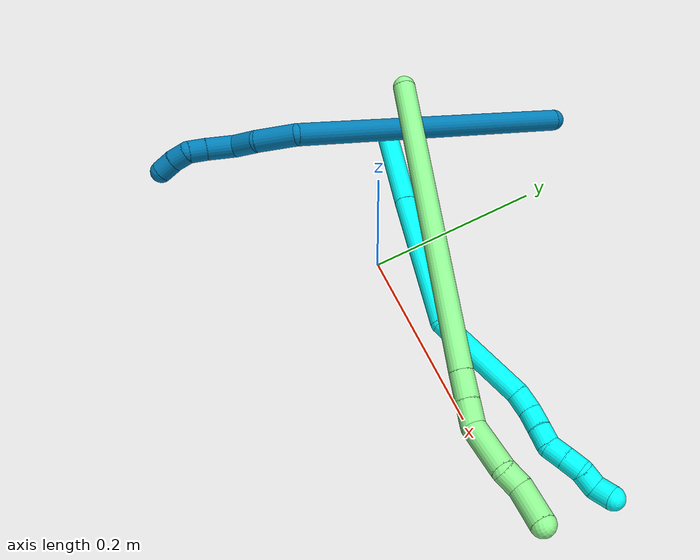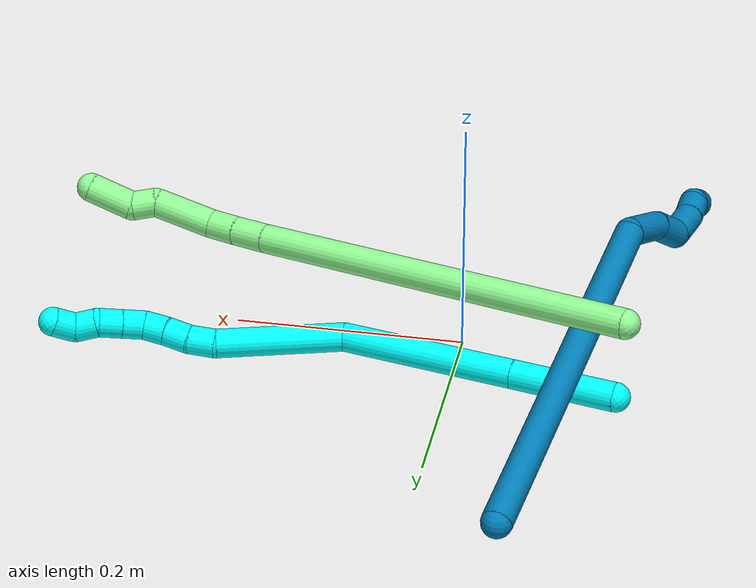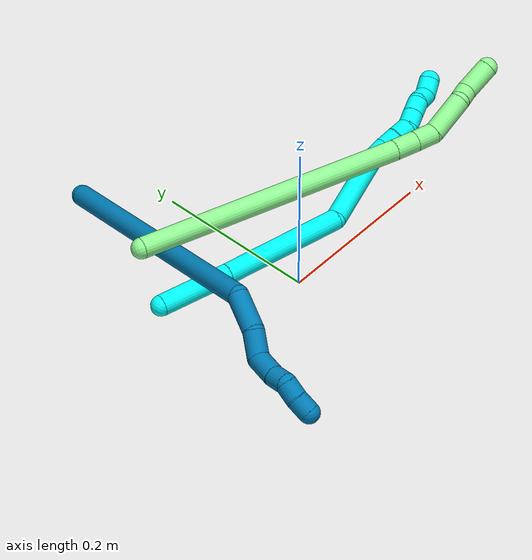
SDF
<sdf version="1.7">
 <world name="default">
  <model name="photoneo_s_sensor">
   <static>1</static>
   <pose>0 0 2 1.57079 1.57079 3.14159</pose>
   <link name="link">
    <inertial><mass>0.1</mass></inertial>
    <sensor name="sensor" type="depth">
     <update_rate>30</update_rate>
     <camera>
      <horizontal_fov>1.22</horizontal_fov>
      <image><width>1920</width><height>1200</height><format>B8G8R8</format></image>
      <clip><near>0.1</near><far>4</far></clip>
      <depth_camera><output>points</output></depth_camera>
     </camera>
     <plugin name="camera_plugin" filename="libgazebo_ros_depth_camera.so">
      <baseline>0.2</baseline>
      <alwaysOn>1</alwaysOn>
      <updateRate>0.0</updateRate>
      <cameraName>camera_ir</cameraName>
      <imageTopicName>/camera/color/image_raw</imageTopicName>
      <cameraInfoTopicName>/camera/color/camera_info</cameraInfoTopicName>
      <depthImageTopicName>/camera/depth/image_raw</depthImageTopicName>
      <depthImageCameraInfoTopicName>/camera/depth/camera_info</depthImageCameraInfoTopicName>
      <pointCloudTopicName>/camera/depth/points</pointCloudTopicName>
      <frameName>fr_optical</frameName>
      <pointCloudCutoff>0.1</pointCloudCutoff>
      <pointCloudCutoffMax>2.0</pointCloudCutoffMax>
      <distortionK1>0</distortionK1>
      <distortionK2>0</distortionK2>
      <distortionK3>0</distortionK3>
      <distortionT1>0</distortionT1>
      <distortionT2>0</distortionT2>
      <CxPrime>0</CxPrime>
      <Cx>0</Cx>
      <Cy>0</Cy>
      <focalLength>0</focalLength>
      <hackBaseline>0</hackBaseline>
     </plugin>
    </sensor>
   </link>
  </model>
  <model name="bin">
   <static>1</static>
   <link name="bottom">
    <collision name="collision-bottom">
     <pose>0 0 -0.01 0 -0 0</pose>
     <geometry><box><size>0.8 0.6 0.02</size></box></geometry>
     <surface>
      <friction><ode><mu>100</mu><mu2>100</mu2></ode></friction>
      <contact><collide_bitmask>65535</collide_bitmask></contact>
     </surface>
    </collision>
   </link>
   <link name="west_wall">
    <collision name="collision-west_wall">
     <pose>-0.41 0 0.1 0 -0 0</pose>
     <geometry><box><size>0.02 0.6 0.2</size></box></geometry>
     <surface>
      <friction><ode><mu>100</mu><mu2>100</mu2></ode></friction>
      <contact><collide_bitmask>65535</collide_bitmask></contact>
     </surface>
    </collision>
   </link>
   <link name="east_wall">
    <collision name="collision-east_wall">
     <pose>0.41 0 0.1 0 -0 0</pose>
     <geometry><box><size>0.02 0.6 0.2</size></box></geometry>
     <surface>
      <friction><ode><mu>100</mu><mu2>100</mu2></ode></friction>
      <contact><collide_bitmask>65535</collide_bitmask></contact>
     </surface>
    </collision>
   </link>
   <link name="south_wall">
    <collision name="collision-south_wall">
     <pose>0 -0.31 0.1 0 -0 0</pose>
     <geometry><box><size>0.8 0.02 0.2</size></box></geometry>
     <surface>
      <friction><ode><mu>100</mu><mu2>100</mu2></ode></friction>
      <contact><collide_bitmask>65535</collide_bitmask></contact>
     </surface>
    </collision>
   </link>
   <link name="north_wall">
    <collision name="collision-north_wall">
     <pose>0 0.31 0.1 0 -0 0</pose>
     <geometry><box><size>0.8 0.02 0.2</size></box></geometry>
     <surface>
      <friction><ode><mu>100</mu><mu2>100</mu2></ode></friction>
      <contact><collide_bitmask>65535</collide_bitmask></contact>
     </surface>
    </collision>
   </link>
  </model>
  <model name="3">
   <static>0</static>
   <link name="3">
    <collision name="collision-cylinder-e_1_1_4">
     <pose>0.031599 -0.018554 0.026396 0.612677 0.774963 0.256749</pose>
     <geometry><cylinder><radius>0.0125</radius><length>0.090322</length></cylinder></geometry>
     <surface>
      <friction><ode><mu>1.16</mu><mu2>1.16</mu2><slip1>0</slip1><slip2>0</slip2></ode></friction>
      <contact><ode><kp>1e+06</kp><kd>1</kd><max_vel>0</max_vel><min_depth>0.001</min_depth></ode></contact>
     </surface>
    </collision>
    <visual name="visual-cylinder-e_1_1_4">
     <pose>0.031599 -0.018554 0.026396 0.612677 0.774963 0.256749</pose>
     <geometry><cylinder><radius>0.0125</radius><length>0.090322</length></cylinder></geometry>
     <material><ambient>0.003922 1 0.996078 1</ambient></material>
    </visual>
    <collision name="collision-cylinder-e_2_4_5">
     <pose>0.117652 -0.067198 0.098918 0.578014 0.779761 0.243151</pose>
     <geometry><cylinder><radius>0.0125</radius><length>0.154897</length></cylinder></geometry>
     <surface>
      <friction><ode><mu>1.16</mu><mu2>1.16</mu2><slip1>0</slip1><slip2>0</slip2></ode></friction>
      <contact><ode><kp>1e+06</kp><kd>1</kd><max_vel>0</max_vel><min_depth>0.001</min_depth></ode></contact>
     </surface>
    </collision>
    <visual name="visual-cylinder-e_2_4_5">
     <pose>0.117652 -0.067198 0.098918 0.578014 0.779761 0.243151</pose>
     <geometry><cylinder><radius>0.0125</radius><length>0.154897</length></cylinder></geometry>
     <material><ambient>0.003922 1 0.996078 1</ambient></material>
    </visual>
    <collision name="collision-cylinder-e_3_5_6">
     <pose>0.217677 -0.090649 0.175629 -0.213745 0.969 -0.112814</pose>
     <geometry><cylinder><radius>0.0125</radius><length>0.110565</length></cylinder></geometry>
     <surface>
      <friction><ode><mu>1.16</mu><mu2>1.16</mu2><slip1>0</slip1><slip2>0</slip2></ode></friction>
      <contact><ode><kp>1e+06</kp><kd>1</kd><max_vel>0</max_vel><min_depth>0.001</min_depth></ode></contact>
     </surface>
    </collision>
    <visual name="visual-cylinder-e_3_5_6">
     <pose>0.217677 -0.090649 0.175629 -0.213745 0.969 -0.112814</pose>
     <geometry><cylinder><radius>0.0125</radius><length>0.110565</length></cylinder></geometry>
     <material><ambient>0.003922 1 0.996078 1</ambient></material>
    </visual>
    <collision name="collision-cylinder-e_4_6_7">
     <pose>0.271662 -0.085244 0.213909 0.158951 0.823653 0.069549</pose>
     <geometry><cylinder><radius>0.0125</radius><length>0.022938</length></cylinder></geometry>
     <surface>
      <friction><ode><mu>1.16</mu><mu2>1.16</mu2><slip1>0</slip1><slip2>0</slip2></ode></friction>
      <contact><ode><kp>1e+06</kp><kd>1</kd><max_vel>0</max_vel><min_depth>0.001</min_depth></ode></contact>
     </surface>
    </collision>
    <visual name="visual-cylinder-e_4_6_7">
     <pose>0.271662 -0.085244 0.213909 0.158951 0.823653 0.069549</pose>
     <geometry><cylinder><radius>0.0125</radius><length>0.022938</length></cylinder></geometry>
     <material><ambient>0.003922 1 0.996078 1</ambient></material>
    </visual>
    <collision name="collision-cylinder-e_5_7_8">
     <pose>0.286378 -0.088719 0.2295 0.276627 0.654785 0.09448</pose>
     <geometry><cylinder><radius>0.0125</radius><length>0.020696</length></cylinder></geometry>
     <surface>
      <friction><ode><mu>1.16</mu><mu2>1.16</mu2><slip1>0</slip1><slip2>0</slip2></ode></friction>
      <contact><ode><kp>1e+06</kp><kd>1</kd><max_vel>0</max_vel><min_depth>0.001</min_depth></ode></contact>
     </surface>
    </collision>
    <visual name="visual-cylinder-e_5_7_8">
     <pose>0.286378 -0.088719 0.2295 0.276627 0.654785 0.09448</pose>
     <geometry><cylinder><radius>0.0125</radius><length>0.020696</length></cylinder></geometry>
     <material><ambient>0.003922 1 0.996078 1</ambient></material>
    </visual>
    <collision name="collision-cylinder-e_6_8_9">
     <pose>0.299414 -0.093255 0.244597 0.308446 0.727869 0.11829</pose>
     <geometry><cylinder><radius>0.0125</radius><length>0.020246</length></cylinder></geometry>
     <surface>
      <friction><ode><mu>1.16</mu><mu2>1.16</mu2><slip1>0</slip1><slip2>0</slip2></ode></friction>
      <contact><ode><kp>1e+06</kp><kd>1</kd><max_vel>0</max_vel><min_depth>0.001</min_depth></ode></contact>
     </surface>
    </collision>
    <visual name="visual-cylinder-e_6_8_9">
     <pose>0.299414 -0.093255 0.244597 0.308446 0.727869 0.11829</pose>
     <geometry><cylinder><radius>0.0125</radius><length>0.020246</length></cylinder></geometry>
     <material><ambient>0.003922 1 0.996078 1</ambient></material>
    </visual>
    <collision name="collision-cylinder-e_7_9_10">
     <pose>0.313313 -0.093202 0.258369 -0.34303 0.798559 -0.145916</pose>
     <geometry><cylinder><radius>0.0125</radius><length>0.020002</length></cylinder></geometry>
     <surface>
      <friction><ode><mu>1.16</mu><mu2>1.16</mu2><slip1>0</slip1><slip2>0</slip2></ode></friction>
      <contact><ode><kp>1e+06</kp><kd>1</kd><max_vel>0</max_vel><min_depth>0.001</min_depth></ode></contact>
     </surface>
    </collision>
    <visual name="visual-cylinder-e_7_9_10">
     <pose>0.313313 -0.093202 0.258369 -0.34303 0.798559 -0.145916</pose>
     <geometry><cylinder><radius>0.0125</radius><length>0.020002</length></cylinder></geometry>
     <material><ambient>0.003922 1 0.996078 1</ambient></material>
    </visual>
    <collision name="collision-cylinder-e_8_10_11">
     <pose>0.327764 -0.088691 0.271525 -0.317516 0.810424 -0.137139</pose>
     <geometry><cylinder><radius>0.0125</radius><length>0.020112</length></cylinder></geometry>
     <surface>
      <friction><ode><mu>1.16</mu><mu2>1.16</mu2><slip1>0</slip1><slip2>0</slip2></ode></friction>
      <contact><ode><kp>1e+06</kp><kd>1</kd><max_vel>0</max_vel><min_depth>0.001</min_depth></ode></contact>
     </surface>
    </collision>
    <visual name="visual-cylinder-e_8_10_11">
     <pose>0.327764 -0.088691 0.271525 -0.317516 0.810424 -0.137139</pose>
     <geometry><cylinder><radius>0.0125</radius><length>0.020112</length></cylinder></geometry>
     <material><ambient>0.003922 1 0.996078 1</ambient></material>
    </visual>
    <collision name="collision-cylinder-e_9_11_12">
     <pose>0.344349 -0.08668 0.281811 0.041295 1.19166 0.028002</pose>
     <geometry><cylinder><radius>0.0125</radius><length>0.020021</length></cylinder></geometry>
     <surface>
      <friction><ode><mu>1.16</mu><mu2>1.16</mu2><slip1>0</slip1><slip2>0</slip2></ode></friction>
      <contact><ode><kp>1e+06</kp><kd>1</kd><max_vel>0</max_vel><min_depth>0.001</min_depth></ode></contact>
     </surface>
    </collision>
    <visual name="visual-cylinder-e_9_11_12">
     <pose>0.344349 -0.08668 0.281811 0.041295 1.19166 0.028002</pose>
     <geometry><cylinder><radius>0.0125</radius><length>0.020021</length></cylinder></geometry>
     <material><ambient>0.003922 1 0.996078 1</ambient></material>
    </visual>
    <collision name="collision-cylinder-e_10_12_2">
     <pose>0.358905 -0.083755 0.29357 -0.364978 0.547253 -0.103497</pose>
     <geometry><cylinder><radius>0.0125</radius><length>0.020201</length></cylinder></geometry>
     <surface>
      <friction><ode><mu>1.16</mu><mu2>1.16</mu2><slip1>0</slip1><slip2>0</slip2></ode></friction>
      <contact><ode><kp>1e+06</kp><kd>1</kd><max_vel>0</max_vel><min_depth>0.001</min_depth></ode></contact>
     </surface>
    </collision>
    <visual name="visual-cylinder-e_10_12_2">
     <pose>0.358905 -0.083755 0.29357 -0.364978 0.547253 -0.103497</pose>
     <geometry><cylinder><radius>0.0125</radius><length>0.020201</length></cylinder></geometry>
     <material><ambient>0.003922 1 0.996078 1</ambient></material>
    </visual>
    <collision name="collision-sphere-2">
     <pose>0.364161 -0.080676 0.301628 0 -0 0</pose>
     <geometry><sphere><radius>0.0125</radius></sphere></geometry>
     <surface>
      <friction><ode><mu>1.16</mu><mu2>1.16</mu2><slip1>0</slip1><slip2>0</slip2></ode></friction>
      <contact><ode><kp>1e+06</kp><kd>1</kd><max_vel>0</max_vel><min_depth>0.001</min_depth></ode></contact>
     </surface>
    </collision>
    <visual name="visual-sphere-2">
     <pose>0.364161 -0.080676 0.301628 0 -0 0</pose>
     <geometry><sphere><radius>0.0125</radius></sphere></geometry>
     <material><ambient>0.003922 1 0.996078 1</ambient></material>
    </visual>
    <collision name="collision-sphere-12">
     <pose>0.353649 -0.086833 0.285513 0 -0 0</pose>
     <geometry><sphere><radius>0.0125</radius></sphere></geometry>
     <surface>
      <friction><ode><mu>1.16</mu><mu2>1.16</mu2><slip1>0</slip1><slip2>0</slip2></ode></friction>
      <contact><ode><kp>1e+06</kp><kd>1</kd><max_vel>0</max_vel><min_depth>0.001</min_depth></ode></contact>
     </surface>
    </collision>
    <visual name="visual-sphere-12">
     <pose>0.353649 -0.086833 0.285513 0 -0 0</pose>
     <geometry><sphere><radius>0.0125</radius></sphere></geometry>
     <material><ambient>0.003922 1 0.996078 1</ambient></material>
    </visual>
    <collision name="collision-sphere-11">
     <pose>0.33505 -0.086528 0.278109 0 -0 0</pose>
     <geometry><sphere><radius>0.0125</radius></sphere></geometry>
     <surface>
      <friction><ode><mu>1.16</mu><mu2>1.16</mu2><slip1>0</slip1><slip2>0</slip2></ode></friction>
      <contact><ode><kp>1e+06</kp><kd>1</kd><max_vel>0</max_vel><min_depth>0.001</min_depth></ode></contact>
     </surface>
    </collision>
    <visual name="visual-sphere-11">
     <pose>0.33505 -0.086528 0.278109 0 -0 0</pose>
     <geometry><sphere><radius>0.0125</radius></sphere></geometry>
     <material><ambient>0.003922 1 0.996078 1</ambient></material>
    </visual>
    <collision name="collision-sphere-10">
     <pose>0.320477 -0.090855 0.264941 0 -0 0</pose>
     <geometry><sphere><radius>0.0125</radius></sphere></geometry>
     <surface>
      <friction><ode><mu>1.16</mu><mu2>1.16</mu2><slip1>0</slip1><slip2>0</slip2></ode></friction>
      <contact><ode><kp>1e+06</kp><kd>1</kd><max_vel>0</max_vel><min_depth>0.001</min_depth></ode></contact>
     </surface>
    </collision>
    <visual name="visual-sphere-10">
     <pose>0.320477 -0.090855 0.264941 0 -0 0</pose>
     <geometry><sphere><radius>0.0125</radius></sphere></geometry>
     <material><ambient>0.003922 1 0.996078 1</ambient></material>
    </visual>
    <collision name="collision-sphere-9">
     <pose>0.306149 -0.095549 0.251798 0 -0 0</pose>
     <geometry><sphere><radius>0.0125</radius></sphere></geometry>
     <surface>
      <friction><ode><mu>1.16</mu><mu2>1.16</mu2><slip1>0</slip1><slip2>0</slip2></ode></friction>
      <contact><ode><kp>1e+06</kp><kd>1</kd><max_vel>0</max_vel><min_depth>0.001</min_depth></ode></contact>
     </surface>
    </collision>
    <visual name="visual-sphere-9">
     <pose>0.306149 -0.095549 0.251798 0 -0 0</pose>
     <geometry><sphere><radius>0.0125</radius></sphere></geometry>
     <material><ambient>0.003922 1 0.996078 1</ambient></material>
    </visual>
    <collision name="collision-sphere-4">
     <pose>0.063197 -0.037109 0.052793 0 -0 0</pose>
     <geometry><sphere><radius>0.0125</radius></sphere></geometry>
     <surface>
      <friction><ode><mu>1.16</mu><mu2>1.16</mu2><slip1>0</slip1><slip2>0</slip2></ode></friction>
      <contact><ode><kp>1e+06</kp><kd>1</kd><max_vel>0</max_vel><min_depth>0.001</min_depth></ode></contact>
     </surface>
    </collision>
    <visual name="visual-sphere-4">
     <pose>0.063197 -0.037109 0.052793 0 -0 0</pose>
     <geometry><sphere><radius>0.0125</radius></sphere></geometry>
     <material><ambient>0.003922 1 0.996078 1</ambient></material>
    </visual>
    <collision name="collision-sphere-1">
     <geometry><sphere><radius>0.0125</radius></sphere></geometry>
     <surface>
      <friction><ode><mu>1.16</mu><mu2>1.16</mu2><slip1>0</slip1><slip2>0</slip2></ode></friction>
      <contact><ode><kp>1e+06</kp><kd>1</kd><max_vel>0</max_vel><min_depth>0.001</min_depth></ode></contact>
     </surface>
    </collision>
    <visual name="visual-sphere-1">
     <geometry><sphere><radius>0.0125</radius></sphere></geometry>
     <material><ambient>0.003922 1 0.996078 1</ambient></material>
    </visual>
    <collision name="collision-sphere-8">
     <pose>0.29268 -0.09096 0.237396 0 -0 0</pose>
     <geometry><sphere><radius>0.0125</radius></sphere></geometry>
     <surface>
      <friction><ode><mu>1.16</mu><mu2>1.16</mu2><slip1>0</slip1><slip2>0</slip2></ode></friction>
      <contact><ode><kp>1e+06</kp><kd>1</kd><max_vel>0</max_vel><min_depth>0.001</min_depth></ode></contact>
     </surface>
    </collision>
    <visual name="visual-sphere-8">
     <pose>0.29268 -0.09096 0.237396 0 -0 0</pose>
     <geometry><sphere><radius>0.0125</radius></sphere></geometry>
     <material><ambient>0.003922 1 0.996078 1</ambient></material>
    </visual>
    <collision name="collision-sphere-5">
     <pose>0.172107 -0.097287 0.145044 0 -0 0</pose>
     <geometry><sphere><radius>0.0125</radius></sphere></geometry>
     <surface>
      <friction><ode><mu>1.16</mu><mu2>1.16</mu2><slip1>0</slip1><slip2>0</slip2></ode></friction>
      <contact><ode><kp>1e+06</kp><kd>1</kd><max_vel>0</max_vel><min_depth>0.001</min_depth></ode></contact>
     </surface>
    </collision>
    <visual name="visual-sphere-5">
     <pose>0.172107 -0.097287 0.145044 0 -0 0</pose>
     <geometry><sphere><radius>0.0125</radius></sphere></geometry>
     <material><ambient>0.003922 1 0.996078 1</ambient></material>
    </visual>
    <collision name="collision-sphere-6">
     <pose>0.263248 -0.08401 0.206214 0 -0 0</pose>
     <geometry><sphere><radius>0.0125</radius></sphere></geometry>
     <surface>
      <friction><ode><mu>1.16</mu><mu2>1.16</mu2><slip1>0</slip1><slip2>0</slip2></ode></friction>
      <contact><ode><kp>1e+06</kp><kd>1</kd><max_vel>0</max_vel><min_depth>0.001</min_depth></ode></contact>
     </surface>
    </collision>
    <visual name="visual-sphere-6">
     <pose>0.263248 -0.08401 0.206214 0 -0 0</pose>
     <geometry><sphere><radius>0.0125</radius></sphere></geometry>
     <material><ambient>0.003922 1 0.996078 1</ambient></material>
    </visual>
    <collision name="collision-sphere-7">
     <pose>0.280076 -0.086477 0.221604 0 -0 0</pose>
     <geometry><sphere><radius>0.0125</radius></sphere></geometry>
     <surface>
      <friction><ode><mu>1.16</mu><mu2>1.16</mu2><slip1>0</slip1><slip2>0</slip2></ode></friction>
      <contact><ode><kp>1e+06</kp><kd>1</kd><max_vel>0</max_vel><min_depth>0.001</min_depth></ode></contact>
     </surface>
    </collision>
    <visual name="visual-sphere-7">
     <pose>0.280076 -0.086477 0.221604 0 -0 0</pose>
     <geometry><sphere><radius>0.0125</radius></sphere></geometry>
     <material><ambient>0.003922 1 0.996078 1</ambient></material>
    </visual>
    <inertial>
     <pose>0.180738 -0.069724 0.147869 0 -0 0</pose>
     <mass>0.5</mass>
     <inertia>
      <ixx>0.000423</ixx>
      <ixy>0</ixy>
      <ixz>0</ixz>
      <iyy>0.000522</iyy>
      <iyz>0</iyz>
      <izz>-0.000213</izz>
     </inertia>
    </inertial>
   </link>
   <pose>-0.140643 0.085281 0.01256 0.261512 0.594052 0.335191</pose>
  </model>
  <model name="9">
   <static>0</static>
   <link name="9">
    <collision name="collision-cylinder-e_1_1_4">
     <pose>-0.039409 -0.154641 0.039386 1.32141 -0.242115 -0.188543</pose>
     <geometry><cylinder><radius>0.0125</radius><length>0.328744</length></cylinder></geometry>
     <surface>
      <friction><ode><mu>1.16</mu><mu2>1.16</mu2><slip1>0</slip1><slip2>0</slip2></ode></friction>
      <contact><ode><kp>1e+06</kp><kd>1</kd><max_vel>0</max_vel><min_depth>0.001</min_depth></ode></contact>
     </surface>
    </collision>
    <visual name="visual-cylinder-e_1_1_4">
     <pose>-0.039409 -0.154641 0.039386 1.32141 -0.242115 -0.188543</pose>
     <geometry><cylinder><radius>0.0125</radius><length>0.328744</length></cylinder></geometry>
     <material><ambient>0 0.490196 0.709804 1</ambient></material>
    </visual>
    <collision name="collision-cylinder-e_2_4_5">
     <pose>-0.090116 -0.328622 0.071892 1.91259 -0.50311 -0.698552</pose>
     <geometry><cylinder><radius>0.0125</radius><length>0.046862</length></cylinder></geometry>
     <surface>
      <friction><ode><mu>1.16</mu><mu2>1.16</mu2><slip1>0</slip1><slip2>0</slip2></ode></friction>
      <contact><ode><kp>1e+06</kp><kd>1</kd><max_vel>0</max_vel><min_depth>0.001</min_depth></ode></contact>
     </surface>
    </collision>
    <visual name="visual-cylinder-e_2_4_5">
     <pose>-0.090116 -0.328622 0.071892 1.91259 -0.50311 -0.698552</pose>
     <geometry><cylinder><radius>0.0125</radius><length>0.046862</length></cylinder></geometry>
     <material><ambient>0 0.490196 0.709804 1</ambient></material>
    </visual>
    <collision name="collision-cylinder-e_3_5_6">
     <pose>-0.110237 -0.357598 0.056244 2.309 -0.595383 -1.21327</pose>
     <geometry><cylinder><radius>0.0125</radius><length>0.03147</length></cylinder></geometry>
     <surface>
      <friction><ode><mu>1.16</mu><mu2>1.16</mu2><slip1>0</slip1><slip2>0</slip2></ode></friction>
      <contact><ode><kp>1e+06</kp><kd>1</kd><max_vel>0</max_vel><min_depth>0.001</min_depth></ode></contact>
     </surface>
    </collision>
    <visual name="visual-cylinder-e_3_5_6">
     <pose>-0.110237 -0.357598 0.056244 2.309 -0.595383 -1.21327</pose>
     <geometry><cylinder><radius>0.0125</radius><length>0.03147</length></cylinder></geometry>
     <material><ambient>0 0.490196 0.709804 1</ambient></material>
    </visual>
    <collision name="collision-cylinder-e_4_6_7">
     <pose>-0.12454 -0.382513 0.047974 1.5383 -0.344072 -0.333274</pose>
     <geometry><cylinder><radius>0.0125</radius><length>0.032478</length></cylinder></geometry>
     <surface>
      <friction><ode><mu>1.16</mu><mu2>1.16</mu2><slip1>0</slip1><slip2>0</slip2></ode></friction>
      <contact><ode><kp>1e+06</kp><kd>1</kd><max_vel>0</max_vel><min_depth>0.001</min_depth></ode></contact>
     </surface>
    </collision>
    <visual name="visual-cylinder-e_4_6_7">
     <pose>-0.12454 -0.382513 0.047974 1.5383 -0.344072 -0.333274</pose>
     <geometry><cylinder><radius>0.0125</radius><length>0.032478</length></cylinder></geometry>
     <material><ambient>0 0.490196 0.709804 1</ambient></material>
    </visual>
    <collision name="collision-cylinder-e_5_7_8">
     <pose>-0.131864 -0.407651 0.050112 1.40587 -0.182705 -0.15493</pose>
     <geometry><cylinder><radius>0.0125</radius><length>0.020327</length></cylinder></geometry>
     <surface>
      <friction><ode><mu>1.16</mu><mu2>1.16</mu2><slip1>0</slip1><slip2>0</slip2></ode></friction>
      <contact><ode><kp>1e+06</kp><kd>1</kd><max_vel>0</max_vel><min_depth>0.001</min_depth></ode></contact>
     </surface>
    </collision>
    <visual name="visual-cylinder-e_5_7_8">
     <pose>-0.131864 -0.407651 0.050112 1.40587 -0.182705 -0.15493</pose>
     <geometry><cylinder><radius>0.0125</radius><length>0.020327</length></cylinder></geometry>
     <material><ambient>0 0.490196 0.709804 1</ambient></material>
    </visual>
    <collision name="collision-cylinder-e_6_8_9">
     <pose>-0.135818 -0.425966 0.046832 2.09779 -0.212139 -0.366124</pose>
     <geometry><cylinder><radius>0.0125</radius><length>0.020015</length></cylinder></geometry>
     <surface>
      <friction><ode><mu>1.16</mu><mu2>1.16</mu2><slip1>0</slip1><slip2>0</slip2></ode></friction>
      <contact><ode><kp>1e+06</kp><kd>1</kd><max_vel>0</max_vel><min_depth>0.001</min_depth></ode></contact>
     </surface>
    </collision>
    <visual name="visual-cylinder-e_6_8_9">
     <pose>-0.135818 -0.425966 0.046832 2.09779 -0.212139 -0.366124</pose>
     <geometry><cylinder><radius>0.0125</radius><length>0.020015</length></cylinder></geometry>
     <material><ambient>0 0.490196 0.709804 1</ambient></material>
    </visual>
    <collision name="collision-cylinder-e_7_9_2">
     <pose>-0.13835 -0.442906 0.036538 2.13542 -0.042275 -0.076793</pose>
     <geometry><cylinder><radius>0.0125</radius><length>0.020105</length></cylinder></geometry>
     <surface>
      <friction><ode><mu>1.16</mu><mu2>1.16</mu2><slip1>0</slip1><slip2>0</slip2></ode></friction>
      <contact><ode><kp>1e+06</kp><kd>1</kd><max_vel>0</max_vel><min_depth>0.001</min_depth></ode></contact>
     </surface>
    </collision>
    <visual name="visual-cylinder-e_7_9_2">
     <pose>-0.13835 -0.442906 0.036538 2.13542 -0.042275 -0.076793</pose>
     <geometry><cylinder><radius>0.0125</radius><length>0.020105</length></cylinder></geometry>
     <material><ambient>0 0.490196 0.709804 1</ambient></material>
    </visual>
    <collision name="collision-sphere-2">
     <pose>-0.138775 -0.45139 0.031164 0 -0 0</pose>
     <geometry><sphere><radius>0.0125</radius></sphere></geometry>
     <surface>
      <friction><ode><mu>1.16</mu><mu2>1.16</mu2><slip1>0</slip1><slip2>0</slip2></ode></friction>
      <contact><ode><kp>1e+06</kp><kd>1</kd><max_vel>0</max_vel><min_depth>0.001</min_depth></ode></contact>
     </surface>
    </collision>
    <visual name="visual-sphere-2">
     <pose>-0.138775 -0.45139 0.031164 0 -0 0</pose>
     <geometry><sphere><radius>0.0125</radius></sphere></geometry>
     <material><ambient>0 0.490196 0.709804 1</ambient></material>
    </visual>
    <collision name="collision-sphere-9">
     <pose>-0.137925 -0.434422 0.041912 0 -0 0</pose>
     <geometry><sphere><radius>0.0125</radius></sphere></geometry>
     <surface>
      <friction><ode><mu>1.16</mu><mu2>1.16</mu2><slip1>0</slip1><slip2>0</slip2></ode></friction>
      <contact><ode><kp>1e+06</kp><kd>1</kd><max_vel>0</max_vel><min_depth>0.001</min_depth></ode></contact>
     </surface>
    </collision>
    <visual name="visual-sphere-9">
     <pose>-0.137925 -0.434422 0.041912 0 -0 0</pose>
     <geometry><sphere><radius>0.0125</radius></sphere></geometry>
     <material><ambient>0 0.490196 0.709804 1</ambient></material>
    </visual>
    <collision name="collision-sphere-4">
     <pose>-0.078818 -0.309282 0.078772 0 -0 0</pose>
     <geometry><sphere><radius>0.0125</radius></sphere></geometry>
     <surface>
      <friction><ode><mu>1.16</mu><mu2>1.16</mu2><slip1>0</slip1><slip2>0</slip2></ode></friction>
      <contact><ode><kp>1e+06</kp><kd>1</kd><max_vel>0</max_vel><min_depth>0.001</min_depth></ode></contact>
     </surface>
    </collision>
    <visual name="visual-sphere-4">
     <pose>-0.078818 -0.309282 0.078772 0 -0 0</pose>
     <geometry><sphere><radius>0.0125</radius></sphere></geometry>
     <material><ambient>0 0.490196 0.709804 1</ambient></material>
    </visual>
    <collision name="collision-sphere-1">
     <geometry><sphere><radius>0.0125</radius></sphere></geometry>
     <surface>
      <friction><ode><mu>1.16</mu><mu2>1.16</mu2><slip1>0</slip1><slip2>0</slip2></ode></friction>
      <contact><ode><kp>1e+06</kp><kd>1</kd><max_vel>0</max_vel><min_depth>0.001</min_depth></ode></contact>
     </surface>
    </collision>
    <visual name="visual-sphere-1">
     <geometry><sphere><radius>0.0125</radius></sphere></geometry>
     <material><ambient>0 0.490196 0.709804 1</ambient></material>
    </visual>
    <collision name="collision-sphere-8">
     <pose>-0.133711 -0.41751 0.051753 0 -0 0</pose>
     <geometry><sphere><radius>0.0125</radius></sphere></geometry>
     <surface>
      <friction><ode><mu>1.16</mu><mu2>1.16</mu2><slip1>0</slip1><slip2>0</slip2></ode></friction>
      <contact><ode><kp>1e+06</kp><kd>1</kd><max_vel>0</max_vel><min_depth>0.001</min_depth></ode></contact>
     </surface>
    </collision>
    <visual name="visual-sphere-8">
     <pose>-0.133711 -0.41751 0.051753 0 -0 0</pose>
     <geometry><sphere><radius>0.0125</radius></sphere></geometry>
     <material><ambient>0 0.490196 0.709804 1</ambient></material>
    </visual>
    <collision name="collision-sphere-5">
     <pose>-0.101413 -0.347962 0.065011 0 -0 0</pose>
     <geometry><sphere><radius>0.0125</radius></sphere></geometry>
     <surface>
      <friction><ode><mu>1.16</mu><mu2>1.16</mu2><slip1>0</slip1><slip2>0</slip2></ode></friction>
      <contact><ode><kp>1e+06</kp><kd>1</kd><max_vel>0</max_vel><min_depth>0.001</min_depth></ode></contact>
     </surface>
    </collision>
    <visual name="visual-sphere-5">
     <pose>-0.101413 -0.347962 0.065011 0 -0 0</pose>
     <geometry><sphere><radius>0.0125</radius></sphere></geometry>
     <material><ambient>0 0.490196 0.709804 1</ambient></material>
    </visual>
    <collision name="collision-sphere-6">
     <pose>-0.119062 -0.367234 0.047477 0 -0 0</pose>
     <geometry><sphere><radius>0.0125</radius></sphere></geometry>
     <surface>
      <friction><ode><mu>1.16</mu><mu2>1.16</mu2><slip1>0</slip1><slip2>0</slip2></ode></friction>
      <contact><ode><kp>1e+06</kp><kd>1</kd><max_vel>0</max_vel><min_depth>0.001</min_depth></ode></contact>
     </surface>
    </collision>
    <visual name="visual-sphere-6">
     <pose>-0.119062 -0.367234 0.047477 0 -0 0</pose>
     <geometry><sphere><radius>0.0125</radius></sphere></geometry>
     <material><ambient>0 0.490196 0.709804 1</ambient></material>
    </visual>
    <collision name="collision-sphere-7">
     <pose>-0.130018 -0.397793 0.048471 0 -0 0</pose>
     <geometry><sphere><radius>0.0125</radius></sphere></geometry>
     <surface>
      <friction><ode><mu>1.16</mu><mu2>1.16</mu2><slip1>0</slip1><slip2>0</slip2></ode></friction>
      <contact><ode><kp>1e+06</kp><kd>1</kd><max_vel>0</max_vel><min_depth>0.001</min_depth></ode></contact>
     </surface>
    </collision>
    <visual name="visual-sphere-7">
     <pose>-0.130018 -0.397793 0.048471 0 -0 0</pose>
     <geometry><sphere><radius>0.0125</radius></sphere></geometry>
     <material><ambient>0 0.490196 0.709804 1</ambient></material>
    </visual>
    <inertial>
     <pose>-0.065745 -0.231261 0.044671 0 -0 0</pose>
     <mass>0.5</mass>
     <inertia>
      <ixx>0.002289</ixx>
      <ixy>0</ixy>
      <ixz>0</ixz>
      <iyy>0.000264</iyy>
      <iyz>0</iyz>
      <izz>0.003541</izz>
     </inertia>
    </inertial>
   </link>
   <pose>-0.070988 0.278325 0.011542 -0.063186 -0.046714 0.058492</pose>
  </model>
  <model name="13">
   <static>0</static>
   <link name="13">
    <collision name="collision-cylinder-e_1_1_4">
     <pose>0.156086 -0.05875 0.002773 1.52363 1.21043 1.16666</pose>
     <geometry><cylinder><radius>0.0125</radius><length>0.333599</length></cylinder></geometry>
     <surface>
      <friction><ode><mu>1.16</mu><mu2>1.16</mu2><slip1>0</slip1><slip2>0</slip2></ode></friction>
      <contact><ode><kp>1e+06</kp><kd>1</kd><max_vel>0</max_vel><min_depth>0.001</min_depth></ode></contact>
     </surface>
    </collision>
    <visual name="visual-cylinder-e_1_1_4">
     <pose>0.156086 -0.05875 0.002773 1.52363 1.21043 1.16666</pose>
     <geometry><cylinder><radius>0.0125</radius><length>0.333599</length></cylinder></geometry>
     <material><ambient>0.564706 0.984314 0.572549 1</ambient></material>
    </visual>
    <collision name="collision-cylinder-e_2_4_5">
     <pose>0.325664 -0.122778 0.006255 1.43735 1.19492 1.07373</pose>
     <geometry><cylinder><radius>0.0125</radius><length>0.02901</length></cylinder></geometry>
     <surface>
      <friction><ode><mu>1.16</mu><mu2>1.16</mu2><slip1>0</slip1><slip2>0</slip2></ode></friction>
      <contact><ode><kp>1e+06</kp><kd>1</kd><max_vel>0</max_vel><min_depth>0.001</min_depth></ode></contact>
     </surface>
    </collision>
    <visual name="visual-cylinder-e_2_4_5">
     <pose>0.325664 -0.122778 0.006255 1.43735 1.19492 1.07373</pose>
     <geometry><cylinder><radius>0.0125</radius><length>0.02901</length></cylinder></geometry>
     <material><ambient>0.564706 0.984314 0.572549 1</ambient></material>
    </visual>
    <collision name="collision-cylinder-e_3_5_6">
     <pose>0.351205 -0.133018 0.007826 1.39862 1.17482 1.021</pose>
     <geometry><cylinder><radius>0.0125</radius><length>0.026119</length></cylinder></geometry>
     <surface>
      <friction><ode><mu>1.16</mu><mu2>1.16</mu2><slip1>0</slip1><slip2>0</slip2></ode></friction>
      <contact><ode><kp>1e+06</kp><kd>1</kd><max_vel>0</max_vel><min_depth>0.001</min_depth></ode></contact>
     </surface>
    </collision>
    <visual name="visual-cylinder-e_3_5_6">
     <pose>0.351205 -0.133018 0.007826 1.39862 1.17482 1.021</pose>
     <geometry><cylinder><radius>0.0125</radius><length>0.026119</length></cylinder></geometry>
     <material><ambient>0.564706 0.984314 0.572549 1</ambient></material>
    </visual>
    <collision name="collision-cylinder-e_4_6_7">
     <pose>0.384051 -0.146391 0.021342 0.586633 0.939868 0.304417</pose>
     <geometry><cylinder><radius>0.0125</radius><length>0.05151</length></cylinder></geometry>
     <surface>
      <friction><ode><mu>1.16</mu><mu2>1.16</mu2><slip1>0</slip1><slip2>0</slip2></ode></friction>
      <contact><ode><kp>1e+06</kp><kd>1</kd><max_vel>0</max_vel><min_depth>0.001</min_depth></ode></contact>
     </surface>
    </collision>
    <visual name="visual-cylinder-e_4_6_7">
     <pose>0.384051 -0.146391 0.021342 0.586633 0.939868 0.304417</pose>
     <geometry><cylinder><radius>0.0125</radius><length>0.05151</length></cylinder></geometry>
     <material><ambient>0.564706 0.984314 0.572549 1</ambient></material>
    </visual>
    <collision name="collision-cylinder-e_5_7_8">
     <pose>0.414333 -0.153068 0.03766 -0.441567 1.16684 -0.294154</pose>
     <geometry><cylinder><radius>0.0125</radius><length>0.020633</length></cylinder></geometry>
     <surface>
      <friction><ode><mu>1.16</mu><mu2>1.16</mu2><slip1>0</slip1><slip2>0</slip2></ode></friction>
      <contact><ode><kp>1e+06</kp><kd>1</kd><max_vel>0</max_vel><min_depth>0.001</min_depth></ode></contact>
     </surface>
    </collision>
    <visual name="visual-cylinder-e_5_7_8">
     <pose>0.414333 -0.153068 0.03766 -0.441567 1.16684 -0.294154</pose>
     <geometry><cylinder><radius>0.0125</radius><length>0.020633</length></cylinder></geometry>
     <material><ambient>0.564706 0.984314 0.572549 1</ambient></material>
    </visual>
    <collision name="collision-cylinder-e_6_8_2">
     <pose>0.43945 -0.158976 0.050276 0.706651 0.925449 0.363882</pose>
     <geometry><cylinder><radius>0.0125</radius><length>0.039129</length></cylinder></geometry>
     <surface>
      <friction><ode><mu>1.16</mu><mu2>1.16</mu2><slip1>0</slip1><slip2>0</slip2></ode></friction>
      <contact><ode><kp>1e+06</kp><kd>1</kd><max_vel>0</max_vel><min_depth>0.001</min_depth></ode></contact>
     </surface>
    </collision>
    <visual name="visual-cylinder-e_6_8_2">
     <pose>0.43945 -0.158976 0.050276 0.706651 0.925449 0.363882</pose>
     <geometry><cylinder><radius>0.0125</radius><length>0.039129</length></cylinder></geometry>
     <material><ambient>0.564706 0.984314 0.572549 1</ambient></material>
    </visual>
    <collision name="collision-sphere-2">
     <pose>0.45508 -0.166616 0.059226 0 -0 0</pose>
     <geometry><sphere><radius>0.0125</radius></sphere></geometry>
     <surface>
      <friction><ode><mu>1.16</mu><mu2>1.16</mu2><slip1>0</slip1><slip2>0</slip2></ode></friction>
      <contact><ode><kp>1e+06</kp><kd>1</kd><max_vel>0</max_vel><min_depth>0.001</min_depth></ode></contact>
     </surface>
    </collision>
    <visual name="visual-sphere-2">
     <pose>0.45508 -0.166616 0.059226 0 -0 0</pose>
     <geometry><sphere><radius>0.0125</radius></sphere></geometry>
     <material><ambient>0.564706 0.984314 0.572549 1</ambient></material>
    </visual>
    <collision name="collision-sphere-4">
     <pose>0.312171 -0.117501 0.005546 0 -0 0</pose>
     <geometry><sphere><radius>0.0125</radius></sphere></geometry>
     <surface>
      <friction><ode><mu>1.16</mu><mu2>1.16</mu2><slip1>0</slip1><slip2>0</slip2></ode></friction>
      <contact><ode><kp>1e+06</kp><kd>1</kd><max_vel>0</max_vel><min_depth>0.001</min_depth></ode></contact>
     </surface>
    </collision>
    <visual name="visual-sphere-4">
     <pose>0.312171 -0.117501 0.005546 0 -0 0</pose>
     <geometry><sphere><radius>0.0125</radius></sphere></geometry>
     <material><ambient>0.564706 0.984314 0.572549 1</ambient></material>
    </visual>
    <collision name="collision-sphere-1">
     <geometry><sphere><radius>0.0125</radius></sphere></geometry>
     <surface>
      <friction><ode><mu>1.16</mu><mu2>1.16</mu2><slip1>0</slip1><slip2>0</slip2></ode></friction>
      <contact><ode><kp>1e+06</kp><kd>1</kd><max_vel>0</max_vel><min_depth>0.001</min_depth></ode></contact>
     </surface>
    </collision>
    <visual name="visual-sphere-1">
     <geometry><sphere><radius>0.0125</radius></sphere></geometry>
     <material><ambient>0.564706 0.984314 0.572549 1</ambient></material>
    </visual>
    <collision name="collision-sphere-8">
     <pose>0.42382 -0.151335 0.041327 0 -0 0</pose>
     <geometry><sphere><radius>0.0125</radius></sphere></geometry>
     <surface>
      <friction><ode><mu>1.16</mu><mu2>1.16</mu2><slip1>0</slip1><slip2>0</slip2></ode></friction>
      <contact><ode><kp>1e+06</kp><kd>1</kd><max_vel>0</max_vel><min_depth>0.001</min_depth></ode></contact>
     </surface>
    </collision>
    <visual name="visual-sphere-8">
     <pose>0.42382 -0.151335 0.041327 0 -0 0</pose>
     <geometry><sphere><radius>0.0125</radius></sphere></geometry>
     <material><ambient>0.564706 0.984314 0.572549 1</ambient></material>
    </visual>
    <collision name="collision-sphere-5">
     <pose>0.339156 -0.128055 0.006963 0 -0 0</pose>
     <geometry><sphere><radius>0.0125</radius></sphere></geometry>
     <surface>
      <friction><ode><mu>1.16</mu><mu2>1.16</mu2><slip1>0</slip1><slip2>0</slip2></ode></friction>
      <contact><ode><kp>1e+06</kp><kd>1</kd><max_vel>0</max_vel><min_depth>0.001</min_depth></ode></contact>
     </surface>
    </collision>
    <visual name="visual-sphere-5">
     <pose>0.339156 -0.128055 0.006963 0 -0 0</pose>
     <geometry><sphere><radius>0.0125</radius></sphere></geometry>
     <material><ambient>0.564706 0.984314 0.572549 1</ambient></material>
    </visual>
    <collision name="collision-sphere-6">
     <pose>0.363254 -0.137981 0.008689 0 -0 0</pose>
     <geometry><sphere><radius>0.0125</radius></sphere></geometry>
     <surface>
      <friction><ode><mu>1.16</mu><mu2>1.16</mu2><slip1>0</slip1><slip2>0</slip2></ode></friction>
      <contact><ode><kp>1e+06</kp><kd>1</kd><max_vel>0</max_vel><min_depth>0.001</min_depth></ode></contact>
     </surface>
    </collision>
    <visual name="visual-sphere-6">
     <pose>0.363254 -0.137981 0.008689 0 -0 0</pose>
     <geometry><sphere><radius>0.0125</radius></sphere></geometry>
     <material><ambient>0.564706 0.984314 0.572549 1</ambient></material>
    </visual>
    <collision name="collision-sphere-7">
     <pose>0.404847 -0.154801 0.033994 0 -0 0</pose>
     <geometry><sphere><radius>0.0125</radius></sphere></geometry>
     <surface>
      <friction><ode><mu>1.16</mu><mu2>1.16</mu2><slip1>0</slip1><slip2>0</slip2></ode></friction>
      <contact><ode><kp>1e+06</kp><kd>1</kd><max_vel>0</max_vel><min_depth>0.001</min_depth></ode></contact>
     </surface>
    </collision>
    <visual name="visual-sphere-7">
     <pose>0.404847 -0.154801 0.033994 0 -0 0</pose>
     <geometry><sphere><radius>0.0125</radius></sphere></geometry>
     <material><ambient>0.564706 0.984314 0.572549 1</ambient></material>
    </visual>
    <inertial>
     <pose>0.232435 -0.087109 0.010309 0 -0 0</pose>
     <mass>0.5</mass>
     <inertia>
      <ixx>0.001492</ixx>
      <ixy>0</ixy>
      <ixz>0</ixz>
      <iyy>0.003752</iyy>
      <iyz>0</iyz>
      <izz>-0.001822</izz>
     </inertia>
    </inertial>
   </link>
   <pose>-0.146089 0.107323 0.094598 -0.743384 0.286375 -0.063479</pose>
  </model>
 </world>
</sdf>
